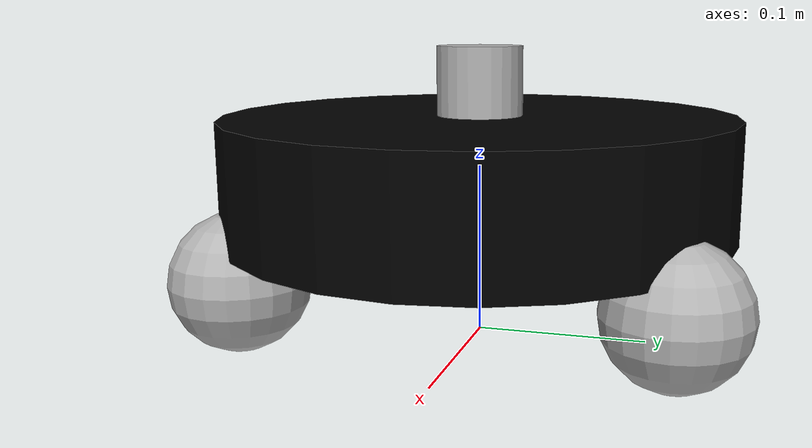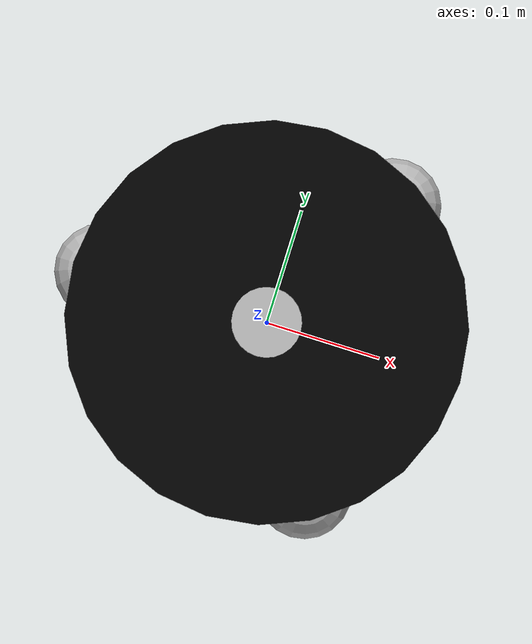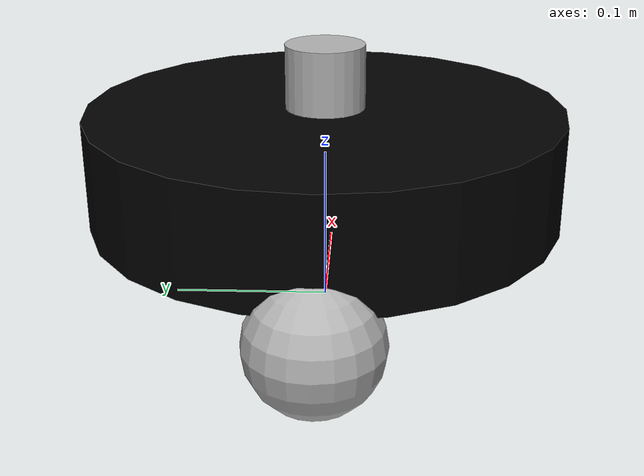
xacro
<!--
    使用 xacro 优化 URDF 版的小车底盘实现：

    实现思路:
    1.将一些常量、变量封装为 xacro:property
      比如:PI 值、小车底盘半径、离地间距、车轮半径、宽度 ....
    2.使用 宏 封装驱动轮以及支撑轮实现，调用相关宏生成驱动轮与支撑轮

-->
<!-- 根标签，必须声明 xmlns:xacro -->
<robot name="my_car" xmlns:xacro="http://www.ros.org/wiki/xacro">
    <!-- 封装变量、常量 -->
    <xacro:property name="PI" value="3.141"/>
    <!-- 宏:黑色设置 -->
    <material name="black">
        <color rgba="0.0 0.0 0.0 1.0" />
    </material>
    <!-- 底盘属性 -->
    <xacro:property name="base_footprint_radius" value="0.001" /> <!-- base_footprint 半径  -->
    <xacro:property name="base_link_radius" value="0.15" /> <!-- base_link 半径 -->
    <xacro:property name="base_link_length" value="0.07" /> <!-- base_link 长 -->
    <xacro:property name="earth_space" value="0.06" /> <!-- 离地间距 -->

    <!-- 底盘 -->
    <link name="base_footprint">
      <visual>
        <geometry>
          <sphere radius="${base_footprint_radius}" />
        </geometry>
      </visual>
    </link>

    <link name="base_link">
      <visual>
        <geometry>
          <cylinder radius="${base_link_radius}" length="${base_link_length}" />
        </geometry>
        <origin xyz="0 0 0" rpy="0 0 0" />
        <material name="black">
          <color rgba="0 0 0.0 1" />
        </material>
      </visual>
    </link>

    <joint name="base_link2base_footprint" type="fixed">
      <parent link="base_footprint" />
      <child link="base_link" />
      <origin xyz="0 0 ${earth_space + base_link_length / 2 }" />
    </joint>
        <!-- Laser Radar link -->
     <link name="laser_radar">
        <visual>
            <origin xyz="0.0 0.0 0.0" rpy="0.0 0.0 0.0"/>
            <geometry>
                <cylinder radius="0.025" length="0.04"/>
            </geometry>
            <material name="laser_radar_color">
                <color rgba="0.7 0.7 0.7 1.0"/>
            </material>
        </visual>
    </link>
    <!-- laser_radar2base_link  -->
    <joint name="laser_radar2base_link" type="fixed">
        <origin xyz="0.0 0.0 0.055" rpy="0.0 0.0 0.0"/>
        <parent link="base_link"/>
        <child link="laser_radar"/>
        <axis xyz="0.0 0.0 0.0"/>
    </joint>

    <!--wheel link -->
     <xacro:property name="wheel_radius" value="0.04" /> <!-- 支撑轮半径 -->

    <!-- wheel宏 -->
    <xacro:macro name="add_wheel" params="name flag1 flag2" >
      <link name="${name}_wheel">
        <visual>
            <geometry>
                <sphere radius="${wheel_radius}" />
            </geometry>
            <origin xyz="0 0 0" rpy="0 0 0" />
            <material name="wheel_color">
                <color rgba="0.7 0.7 0.7 1.0"/>
            </material>
        </visual>
      </link>

      <joint name="${name}_wheel2base_link" type="continuous">
          <parent link="base_link" />
          <child link="${name}_wheel" />
          <origin xyz="${flag1} ${flag2} ${-(base_link_length / 2 + earth_space / 2)+0.01}" />
          <axis xyz="1 1 0" />
      </joint>
    </xacro:macro>
    <xacro:add_wheel name="1" flag1="-0.14" flag2="0"/>
    <xacro:add_wheel name="2" flag1="0.07" flag2="0.121244"/>
    <xacro:add_wheel name="3" flag1="0.07" flag2="-0.121244"/>

</robot>
